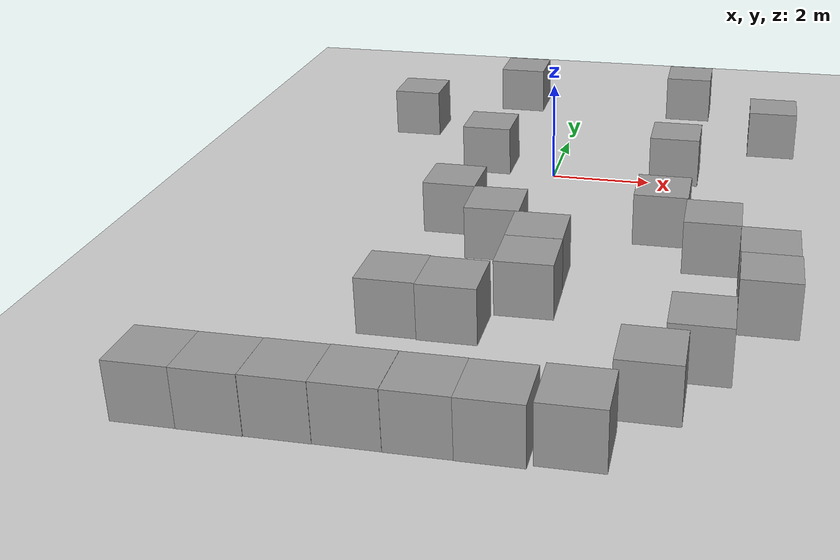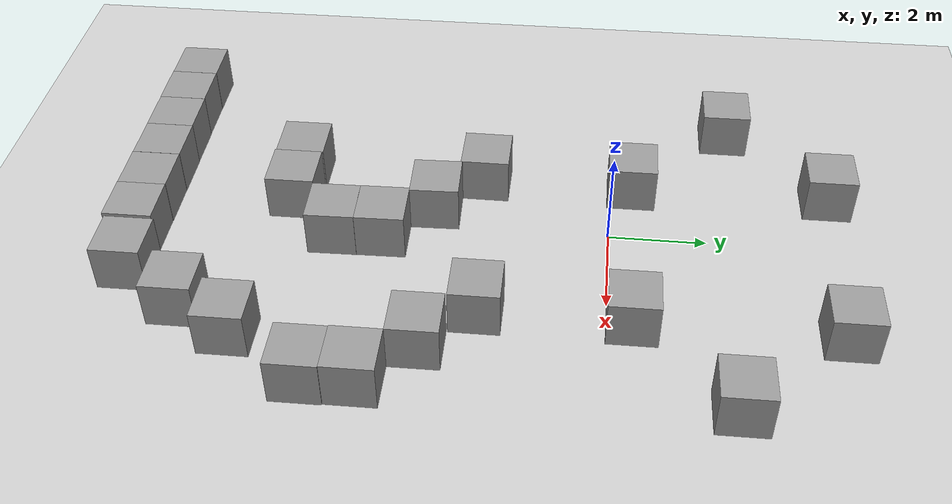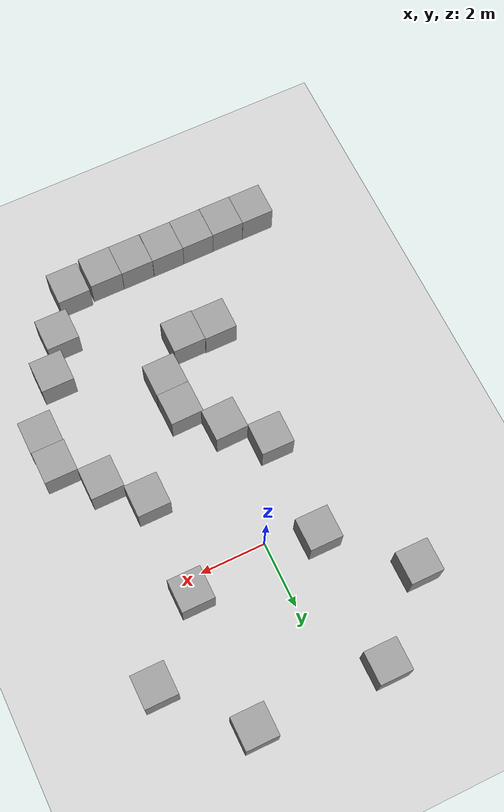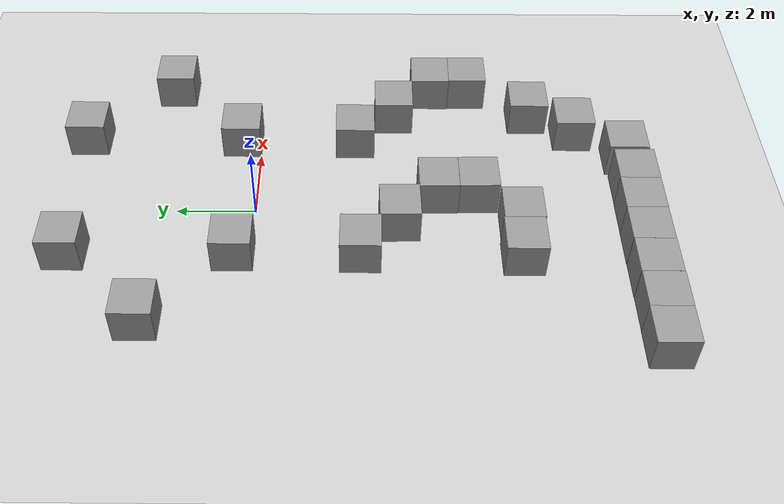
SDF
<sdf version="1.7">
 <world name="default">
  <light name="sun" type="directional">
   <pose>0 0 10 0 -0 0</pose>
   <diffuse>0.8 0.8 0.8 1</diffuse>
   <specular>0.2 0.2 0.2 1</specular>
   <attenuation>
    <range>1000</range>
    <constant>0.9</constant>
    <linear>0.01</linear>
    <quadratic>0.001</quadratic>
   </attenuation>
   <direction>-0.5 0.1 -0.9</direction>
   <spot><inner_angle>0</inner_angle><outer_angle>0</outer_angle><falloff>0</falloff></spot>
  </light>
  <model name="ground_plane">
   <static>1</static>
   <link name="link">
    <collision name="collision">
     <geometry><plane><normal>0 0 1</normal><size>100 100</size></plane></geometry>
     <surface><friction><ode><mu>100</mu><mu2>50</mu2></ode></friction></surface>
    </collision>
    <visual name="visual">
     <cast_shadows>0</cast_shadows>
     <geometry><plane><normal>0 0 1</normal><size>100 100</size></plane></geometry>
     <material>
      <script><uri>file://media/materials/scripts/gazebo.material</uri><name>Gazebo/Grey</name></script>
     </material>
    </visual>
   </link>
  </model>
  <gravity>0 0 -9.8</gravity>
  <magnetic_field>6e-06 2.3e-05 -4.2e-05</magnetic_field>
  <atmosphere type="adiabatic"/>
  <physics type="ode">
   <max_step_size>0.001</max_step_size>
   <real_time_factor>1</real_time_factor>
   <real_time_update_rate>1000</real_time_update_rate>
  </physics>
  <scene><ambient>0.4 0.4 0.4 1</ambient><background>0.7 0.7 0.7 1</background><shadows>1</shadows></scene>
  <audio><device>default</device></audio>
  <spherical_coordinates>
   <surface_model>EARTH_WGS84</surface_model>
   <latitude_deg>0</latitude_deg>
   <longitude_deg>0</longitude_deg>
   <elevation>0</elevation>
   <heading_deg>0</heading_deg>
  </spherical_coordinates>
  <model name="unit_box">
   <pose>-1.43559 0.449511 0.499995 0 1e-05 0</pose>
   <link name="link">
    <inertial>
     <mass>1</mass>
     <inertia>
      <ixx>0.166667</ixx>
      <ixy>0</ixy>
      <ixz>0</ixz>
      <iyy>0.166667</iyy>
      <iyz>0</iyz>
      <izz>0.166667</izz>
     </inertia>
    </inertial>
    <collision name="collision"><geometry><box><size>1 1 1</size></box></geometry></collision>
    <visual name="visual">
     <geometry><box><size>1 1 1</size></box></geometry>
     <material>
      <script><name>Gazebo/Grey</name><uri>file://media/materials/scripts/gazebo.material</uri></script>
     </material>
    </visual>
   </link>
  </model>
  <model name="unit_box_0">
   <pose>-3.50289 2.48353 0.499995 -1e-05 -0 -0</pose>
   <link name="link">
    <inertial>
     <mass>1</mass>
     <inertia>
      <ixx>0.166667</ixx>
      <ixy>0</ixy>
      <ixz>0</ixz>
      <iyy>0.166667</iyy>
      <iyz>0</iyz>
      <izz>0.166667</izz>
     </inertia>
    </inertial>
    <collision name="collision"><geometry><box><size>1 1 1</size></box></geometry></collision>
    <visual name="visual">
     <geometry><box><size>1 1 1</size></box></geometry>
     <material>
      <script><name>Gazebo/Grey</name><uri>file://media/materials/scripts/gazebo.material</uri></script>
     </material>
    </visual>
   </link>
  </model>
  <model name="unit_box_1">
   <pose>-1.44566 4.54217 0.499995 0 1e-05 0</pose>
   <link name="link">
    <inertial>
     <mass>1</mass>
     <inertia>
      <ixx>0.166667</ixx>
      <ixy>0</ixy>
      <ixz>0</ixz>
      <iyy>0.166667</iyy>
      <iyz>0</iyz>
      <izz>0.166667</izz>
     </inertia>
    </inertial>
    <collision name="collision"><geometry><box><size>1 1 1</size></box></geometry></collision>
    <visual name="visual">
     <geometry><box><size>1 1 1</size></box></geometry>
     <material>
      <script><name>Gazebo/Grey</name><uri>file://media/materials/scripts/gazebo.material</uri></script>
     </material>
    </visual>
   </link>
  </model>
  <model name="unit_box_2">
   <pose>2.50265 0.495554 0.499995 -1e-05 -0 -0</pose>
   <link name="link">
    <inertial>
     <mass>1</mass>
     <inertia>
      <ixx>0.166667</ixx>
      <ixy>0</ixy>
      <ixz>0</ixz>
      <iyy>0.166667</iyy>
      <iyz>0</iyz>
      <izz>0.166667</izz>
     </inertia>
    </inertial>
    <collision name="collision"><geometry><box><size>1 1 1</size></box></geometry></collision>
    <visual name="visual">
     <geometry><box><size>1 1 1</size></box></geometry>
     <material>
      <script><name>Gazebo/Grey</name><uri>file://media/materials/scripts/gazebo.material</uri></script>
     </material>
    </visual>
   </link>
  </model>
  <model name="unit_box_3">
   <pose>4.48327 2.4313 0.499995 0 1e-05 0</pose>
   <link name="link">
    <inertial>
     <mass>1</mass>
     <inertia>
      <ixx>0.166667</ixx>
      <ixy>0</ixy>
      <ixz>0</ixz>
      <iyy>0.166667</iyy>
      <iyz>0</iyz>
      <izz>0.166667</izz>
     </inertia>
    </inertial>
    <collision name="collision"><geometry><box><size>1 1 1</size></box></geometry></collision>
    <visual name="visual">
     <geometry><box><size>1 1 1</size></box></geometry>
     <material>
      <script><name>Gazebo/Grey</name><uri>file://media/materials/scripts/gazebo.material</uri></script>
     </material>
    </visual>
   </link>
  </model>
  <model name="unit_box_4">
   <pose>2.53543 4.55222 0.499995 -1e-05 -0 -0</pose>
   <link name="link">
    <inertial>
     <mass>1</mass>
     <inertia>
      <ixx>0.166667</ixx>
      <ixy>0</ixy>
      <ixz>0</ixz>
      <iyy>0.166667</iyy>
      <iyz>0</iyz>
      <izz>0.166667</izz>
     </inertia>
    </inertial>
    <collision name="collision"><geometry><box><size>1 1 1</size></box></geometry></collision>
    <visual name="visual">
     <geometry><box><size>1 1 1</size></box></geometry>
     <material>
      <script><name>Gazebo/Grey</name><uri>file://media/materials/scripts/gazebo.material</uri></script>
     </material>
    </visual>
   </link>
  </model>
  <model name="unit_box_5">
   <pose>-1.46572 -2.64163 0.499995 0 -1e-05 -0.0087</pose>
   <link name="link">
    <inertial>
     <mass>1</mass>
     <inertia>
      <ixx>0.166667</ixx>
      <ixy>0</ixy>
      <ixz>0</ixz>
      <iyy>0.166667</iyy>
      <iyz>0</iyz>
      <izz>0.166667</izz>
     </inertia>
    </inertial>
    <collision name="collision"><geometry><box><size>1 1 1</size></box></geometry></collision>
    <visual name="visual">
     <geometry><box><size>1 1 1</size></box></geometry>
     <material>
      <script><name>Gazebo/Grey</name><uri>file://media/materials/scripts/gazebo.material</uri></script>
     </material>
    </visual>
   </link>
  </model>
  <model name="unit_box_6">
   <pose>2.47131 -2.48151 0.499995 -1e-05 -0 -0</pose>
   <link name="link">
    <inertial>
     <mass>1</mass>
     <inertia>
      <ixx>0.166667</ixx>
      <ixy>0</ixy>
      <ixz>0</ixz>
      <iyy>0.166667</iyy>
      <iyz>0</iyz>
      <izz>0.166667</izz>
     </inertia>
    </inertial>
    <collision name="collision"><geometry><box><size>1 1 1</size></box></geometry></collision>
    <visual name="visual">
     <geometry><box><size>1 1 1</size></box></geometry>
     <material>
      <script><name>Gazebo/Grey</name><uri>file://media/materials/scripts/gazebo.material</uri></script>
     </material>
    </visual>
   </link>
  </model>
  <model name="unit_box_7">
   <pose>-0.458005 -3.60119 0.499995 0 1e-05 0.023738</pose>
   <link name="link">
    <inertial>
     <mass>1</mass>
     <inertia>
      <ixx>0.166667</ixx>
      <ixy>0</ixy>
      <ixz>0</ixz>
      <iyy>0.166667</iyy>
      <iyz>0</iyz>
      <izz>0.166667</izz>
     </inertia>
    </inertial>
    <collision name="collision"><geometry><box><size>1 1 1</size></box></geometry></collision>
    <visual name="visual">
     <geometry><box><size>1 1 1</size></box></geometry>
     <material>
      <script><name>Gazebo/Grey</name><uri>file://media/materials/scripts/gazebo.material</uri></script>
     </material>
    </visual>
   </link>
  </model>
  <model name="unit_box_8">
   <pose>3.44681 -3.50243 0.499995 -1e-05 -0 0.00287</pose>
   <link name="link">
    <inertial>
     <mass>1</mass>
     <inertia>
      <ixx>0.166667</ixx>
      <ixy>0</ixy>
      <ixz>0</ixz>
      <iyy>0.166667</iyy>
      <iyz>0</iyz>
      <izz>0.166667</izz>
     </inertia>
    </inertial>
    <collision name="collision"><geometry><box><size>1 1 1</size></box></geometry></collision>
    <visual name="visual">
     <geometry><box><size>1 1 1</size></box></geometry>
     <material>
      <script><name>Gazebo/Grey</name><uri>file://media/materials/scripts/gazebo.material</uri></script>
     </material>
    </visual>
   </link>
  </model>
  <model name="unit_box_9">
   <pose>0.491825 -4.58321 0.499995 -0 -1e-05 0.015124</pose>
   <link name="link">
    <inertial>
     <mass>1</mass>
     <inertia>
      <ixx>0.166667</ixx>
      <ixy>0</ixy>
      <ixz>0</ixz>
      <iyy>0.166667</iyy>
      <iyz>0</iyz>
      <izz>0.166667</izz>
     </inertia>
    </inertial>
    <collision name="collision"><geometry><box><size>1 1 1</size></box></geometry></collision>
    <visual name="visual">
     <geometry><box><size>1 1 1</size></box></geometry>
     <material>
      <script><name>Gazebo/Grey</name><uri>file://media/materials/scripts/gazebo.material</uri></script>
     </material>
    </visual>
   </link>
  </model>
  <model name="unit_box_10">
   <pose>4.44186 -4.50066 0.499995 0 1e-05 0.000797</pose>
   <link name="link">
    <inertial>
     <mass>1</mass>
     <inertia>
      <ixx>0.166667</ixx>
      <ixy>0</ixy>
      <ixz>0</ixz>
      <iyy>0.166667</iyy>
      <iyz>0</iyz>
      <izz>0.166667</izz>
     </inertia>
    </inertial>
    <collision name="collision"><geometry><box><size>1 1 1</size></box></geometry></collision>
    <visual name="visual">
     <geometry><box><size>1 1 1</size></box></geometry>
     <material>
      <script><name>Gazebo/Grey</name><uri>file://media/materials/scripts/gazebo.material</uri></script>
     </material>
    </visual>
   </link>
  </model>
  <model name="unit_box_11">
   <pose>0.510674 -5.58349 0.499995 -0 -1e-05 0.014913</pose>
   <link name="link">
    <inertial>
     <mass>1</mass>
     <inertia>
      <ixx>0.166667</ixx>
      <ixy>0</ixy>
      <ixz>0</ixz>
      <iyy>0.166667</iyy>
      <iyz>0</iyz>
      <izz>0.166667</izz>
     </inertia>
    </inertial>
    <collision name="collision"><geometry><box><size>1 1 1</size></box></geometry></collision>
    <visual name="visual">
     <geometry><box><size>1 1 1</size></box></geometry>
     <material>
      <script><name>Gazebo/Grey</name><uri>file://media/materials/scripts/gazebo.material</uri></script>
     </material>
    </visual>
   </link>
  </model>
  <model name="unit_box_12">
   <pose>4.46118 -5.50075 0.499995 0 -1e-05 0.000647</pose>
   <link name="link">
    <inertial>
     <mass>1</mass>
     <inertia>
      <ixx>0.166667</ixx>
      <ixy>0</ixy>
      <ixz>0</ixz>
      <iyy>0.166667</iyy>
      <iyz>0</iyz>
      <izz>0.166667</izz>
     </inertia>
    </inertial>
    <collision name="collision"><geometry><box><size>1 1 1</size></box></geometry></collision>
    <visual name="visual">
     <geometry><box><size>1 1 1</size></box></geometry>
     <material>
      <script><name>Gazebo/Grey</name><uri>file://media/materials/scripts/gazebo.material</uri></script>
     </material>
    </visual>
   </link>
  </model>
  <model name="unit_box_13">
   <pose>-0.522211 -6.59901 0.499995 -1e-05 -0 -0</pose>
   <link name="link">
    <inertial>
     <mass>1</mass>
     <inertia>
      <ixx>0.166667</ixx>
      <ixy>0</ixy>
      <ixz>0</ixz>
      <iyy>0.166667</iyy>
      <iyz>0</iyz>
      <izz>0.166667</izz>
     </inertia>
    </inertial>
    <collision name="collision"><geometry><box><size>1 1 1</size></box></geometry></collision>
    <visual name="visual">
     <geometry><box><size>1 1 1</size></box></geometry>
     <material>
      <script><name>Gazebo/Grey</name><uri>file://media/materials/scripts/gazebo.material</uri></script>
     </material>
    </visual>
   </link>
  </model>
  <model name="unit_box_14">
   <pose>3.44727 -7.09018 0.499995 -1e-05 -0 -0</pose>
   <link name="link">
    <inertial>
     <mass>1</mass>
     <inertia>
      <ixx>0.166667</ixx>
      <ixy>0</ixy>
      <ixz>0</ixz>
      <iyy>0.166667</iyy>
      <iyz>0</iyz>
      <izz>0.166667</izz>
     </inertia>
    </inertial>
    <collision name="collision"><geometry><box><size>1 1 1</size></box></geometry></collision>
    <visual name="visual">
     <geometry><box><size>1 1 1</size></box></geometry>
     <material>
      <script><name>Gazebo/Grey</name><uri>file://media/materials/scripts/gazebo.material</uri></script>
     </material>
    </visual>
   </link>
  </model>
  <model name="unit_box_15">
   <pose>2.79466 -8.24318 0.499995 0 1e-05 0</pose>
   <link name="link">
    <inertial>
     <mass>1</mass>
     <inertia>
      <ixx>0.166667</ixx>
      <ixy>0</ixy>
      <ixz>0</ixz>
      <iyy>0.166667</iyy>
      <iyz>0</iyz>
      <izz>0.166667</izz>
     </inertia>
    </inertial>
    <collision name="collision"><geometry><box><size>1 1 1</size></box></geometry></collision>
    <visual name="visual">
     <geometry><box><size>1 1 1</size></box></geometry>
     <material>
      <script><name>Gazebo/Grey</name><uri>file://media/materials/scripts/gazebo.material</uri></script>
     </material>
    </visual>
   </link>
  </model>
  <model name="unit_box_16">
   <pose>1.90715 -9.4948 0.499995 -1e-05 -0 -0</pose>
   <link name="link">
    <inertial>
     <mass>1</mass>
     <inertia>
      <ixx>0.166667</ixx>
      <ixy>0</ixy>
      <ixz>0</ixz>
      <iyy>0.166667</iyy>
      <iyz>0</iyz>
      <izz>0.166667</izz>
     </inertia>
    </inertial>
    <collision name="collision"><geometry><box><size>1 1 1</size></box></geometry></collision>
    <visual name="visual">
     <geometry><box><size>1 1 1</size></box></geometry>
     <material>
      <script><name>Gazebo/Grey</name><uri>file://media/materials/scripts/gazebo.material</uri></script>
     </material>
    </visual>
   </link>
  </model>
  <model name="unit_box_17">
   <pose>0.832543 -9.57765 0.499995 0 -1e-05 -0.000198</pose>
   <link name="link">
    <inertial>
     <mass>1</mass>
     <inertia>
      <ixx>0.166667</ixx>
      <ixy>0</ixy>
      <ixz>0</ixz>
      <iyy>0.166667</iyy>
      <iyz>0</iyz>
      <izz>0.166667</izz>
     </inertia>
    </inertial>
    <collision name="collision"><geometry><box><size>1 1 1</size></box></geometry></collision>
    <visual name="visual">
     <geometry><box><size>1 1 1</size></box></geometry>
     <material>
      <script><name>Gazebo/Grey</name><uri>file://media/materials/scripts/gazebo.material</uri></script>
     </material>
    </visual>
   </link>
  </model>
  <model name="unit_box_18">
   <pose>-0.16745 -9.57229 0.499995 0 1e-05 -0.000192</pose>
   <link name="link">
    <inertial>
     <mass>1</mass>
     <inertia>
      <ixx>0.166667</ixx>
      <ixy>0</ixy>
      <ixz>0</ixz>
      <iyy>0.166667</iyy>
      <iyz>0</iyz>
      <izz>0.166667</izz>
     </inertia>
    </inertial>
    <collision name="collision"><geometry><box><size>1 1 1</size></box></geometry></collision>
    <visual name="visual">
     <geometry><box><size>1 1 1</size></box></geometry>
     <material>
      <script><name>Gazebo/Grey</name><uri>file://media/materials/scripts/gazebo.material</uri></script>
     </material>
    </visual>
   </link>
  </model>
  <model name="unit_box_19">
   <pose>-1.17001 -9.56758 0.499995 0 1e-05 -0.001154</pose>
   <link name="link">
    <inertial>
     <mass>1</mass>
     <inertia>
      <ixx>0.166667</ixx>
      <ixy>0</ixy>
      <ixz>0</ixz>
      <iyy>0.166667</iyy>
      <iyz>0</iyz>
      <izz>0.166667</izz>
     </inertia>
    </inertial>
    <collision name="collision"><geometry><box><size>1 1 1</size></box></geometry></collision>
    <visual name="visual">
     <geometry><box><size>1 1 1</size></box></geometry>
     <material>
      <script><name>Gazebo/Grey</name><uri>file://media/materials/scripts/gazebo.material</uri></script>
     </material>
    </visual>
   </link>
  </model>
  <model name="unit_box_20">
   <pose>-2.17023 -9.57152 0.499995 1e-05 0 -0.001122</pose>
   <link name="link">
    <inertial>
     <mass>1</mass>
     <inertia>
      <ixx>0.166667</ixx>
      <ixy>0</ixy>
      <ixz>0</ixz>
      <iyy>0.166667</iyy>
      <iyz>0</iyz>
      <izz>0.166667</izz>
     </inertia>
    </inertial>
    <collision name="collision"><geometry><box><size>1 1 1</size></box></geometry></collision>
    <visual name="visual">
     <geometry><box><size>1 1 1</size></box></geometry>
     <material>
      <script><name>Gazebo/Grey</name><uri>file://media/materials/scripts/gazebo.material</uri></script>
     </material>
    </visual>
   </link>
  </model>
  <model name="unit_box_21">
   <pose>-3.17062 -9.57761 0.499995 0 -1e-05 -0.001114</pose>
   <link name="link">
    <inertial>
     <mass>1</mass>
     <inertia>
      <ixx>0.166667</ixx>
      <ixy>0</ixy>
      <ixz>0</ixz>
      <iyy>0.166667</iyy>
      <iyz>0</iyz>
      <izz>0.166667</izz>
     </inertia>
    </inertial>
    <collision name="collision"><geometry><box><size>1 1 1</size></box></geometry></collision>
    <visual name="visual">
     <geometry><box><size>1 1 1</size></box></geometry>
     <material>
      <script><name>Gazebo/Grey</name><uri>file://media/materials/scripts/gazebo.material</uri></script>
     </material>
    </visual>
   </link>
  </model>
  <model name="unit_box_22">
   <pose>-4.1707 -9.57218 0.499995 -1e-05 0 -0.00111</pose>
   <link name="link">
    <inertial>
     <mass>1</mass>
     <inertia>
      <ixx>0.166667</ixx>
      <ixy>0</ixy>
      <ixz>0</ixz>
      <iyy>0.166667</iyy>
      <iyz>0</iyz>
      <izz>0.166667</izz>
     </inertia>
    </inertial>
    <collision name="collision"><geometry><box><size>1 1 1</size></box></geometry></collision>
    <visual name="visual">
     <geometry><box><size>1 1 1</size></box></geometry>
     <material>
      <script><name>Gazebo/Grey</name><uri>file://media/materials/scripts/gazebo.material</uri></script>
     </material>
    </visual>
   </link>
  </model>
  <model name="unit_box_23">
   <pose>-1.52222 -6.57504 0.5 0 -0 2e-06</pose>
   <link name="link">
    <inertial>
     <mass>1</mass>
     <inertia>
      <ixx>0.166667</ixx>
      <ixy>0</ixy>
      <ixz>0</ixz>
      <iyy>0.166667</iyy>
      <iyz>0</iyz>
      <izz>0.166667</izz>
     </inertia>
    </inertial>
    <collision name="collision"><geometry><box><size>1 1 1</size></box></geometry></collision>
    <visual name="visual">
     <geometry><box><size>1 1 1</size></box></geometry>
     <material>
      <script><name>Gazebo/Grey</name><uri>file://media/materials/scripts/gazebo.material</uri></script>
     </material>
    </visual>
   </link>
  </model>
 </world>
</sdf>
